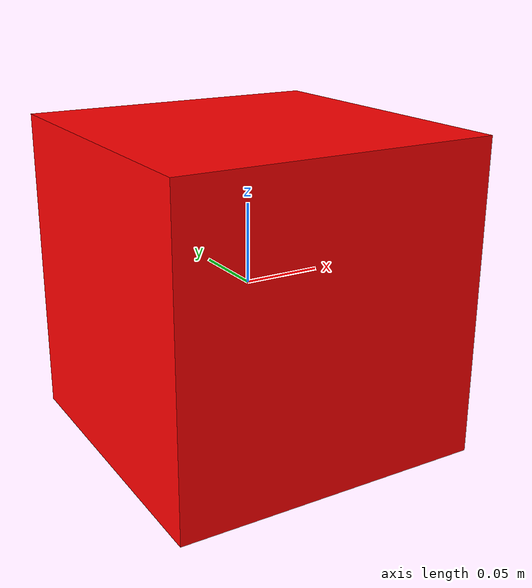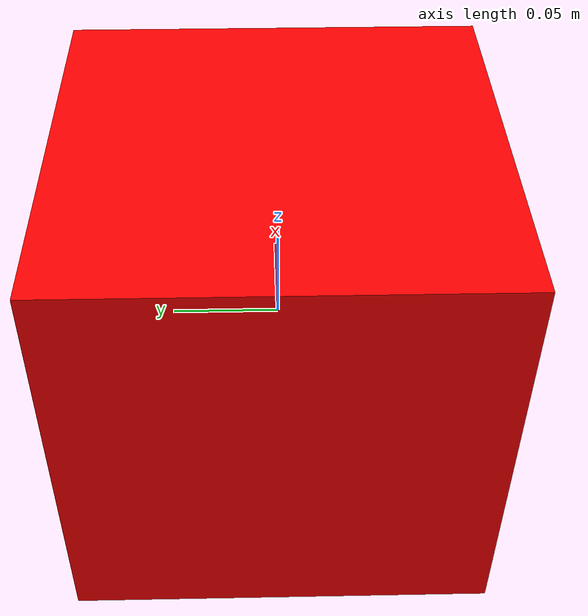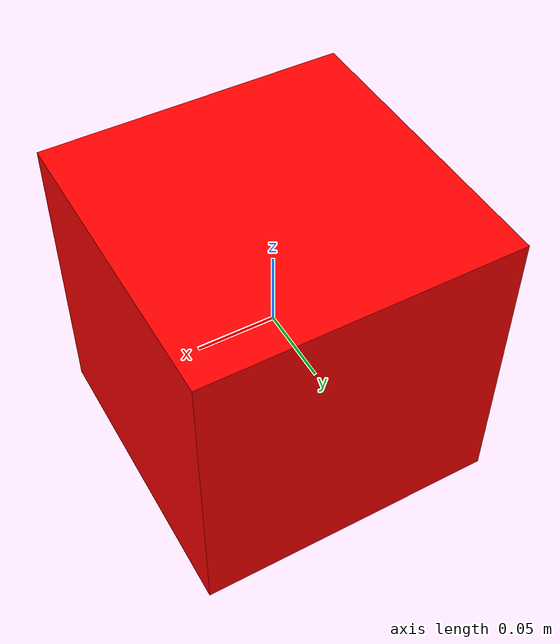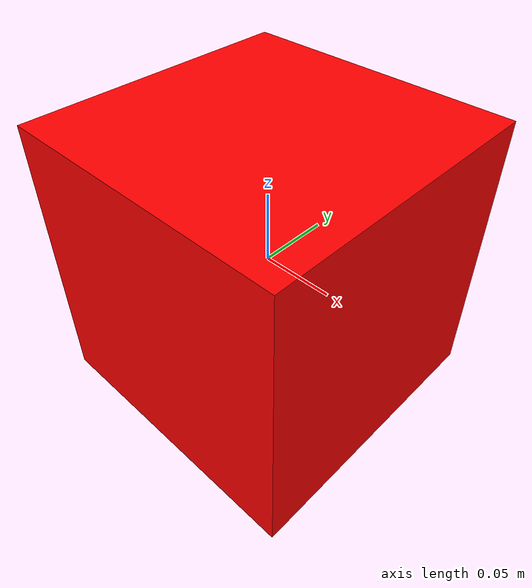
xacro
<?xml version="1.0"?>
<robot name="mecabot_gz" xmlns:xacro="http://www.ros.org/wiki/xacro">

  <!--
      This xacro file is to be used with the
      'ros_gz_sim create' command. That is to be
      spawned to gazebo and not to be used inside
      a world file.
  -->

  <xacro:include filename="lks_arena.include.xacro"/>

  <!-- SIZES -->
  <xacro:property name="cube_length" value="0.195"/>
  <xacro:property name="can_length" value="0.396"/>
  <xacro:property name="can_radius" value="0.078"/>

  <xacro:arg name="color" default="red"/>
  <xacro:arg name="shape" default="cube"/>

  <!-- MATERIALS -->
  <material name="red">
    <color rgba="1 0 0 1"/>
  </material>

  <material name="green">
    <color rgba="0 1 0 1"/>
  </material>

  <material name="blue">
    <color rgba="0 0 1 1"/>
  </material>

  <!-- ROOT LINK -->
  <link name="root"/>

  <!-- CUBE -->
  <xacro:if value="${'$(arg shape)' == 'cube'}">
    <link name="cube">

      <visual>
        <origin xyz="0 0 0" rpy="0 0 0"/>
        <geometry>
          <box size="${cube_length} ${cube_length} ${cube_length}"/>
        </geometry>
        <material name="$(arg color)"/>
      </visual>

      <collision>
        <origin xyz="0 0 0" rpy="0 0 0"/>
        <geometry>
          <box size="${cube_length} ${cube_length} ${cube_length}"/>
        </geometry>
      </collision>

      <xacro:inertial_box mass="0.4" x="${cube_length}" y="${cube_length}" z="${cube_length}">
        <origin xyz="0 0 0"/>
      </xacro:inertial_box>

    </link>
  </xacro:if>

  <!-- CAN -->
  <xacro:if value="${'$(arg shape)' == 'can'}">
    <link name="can">

      <visual>
        <origin xyz="0 0 0" rpy="0 0 0"/>
        <geometry>
          <cylinder radius="${can_radius}" length="${can_length}"/>
        </geometry>
        <material name="$(arg color)"/>
      </visual>

      <collision>
        <origin xyz="0 0 0" rpy="0 0 0"/>
        <geometry>
          <cylinder radius="${can_radius}" length="${can_length}"/>
        </geometry>
      </collision>

      <xacro:inertial_cylinder mass="0.1" length="${can_length}" radius="${can_radius}">
        <origin xyz="0 0 0"/>
      </xacro:inertial_cylinder>

    </link>
  </xacro:if>

  <!-- CIRCLE CARD -->
  <xacro:if value="${'$(arg shape)' == 'circle_card'}">
    <link name="circle_card">

      <visual>
        <origin xyz="0 0 0" rpy="0 0 0"/>
        <geometry>
          <!-- Assuming container box length -->
          <cylinder radius="0.14" length="0.001"/>
        </geometry>
        <material name="$(arg color)"/>
      </visual>

      <collision>
        <origin xyz="0 0 0" rpy="0 0 0"/>
        <geometry>
          <!-- Assuming container box length -->
          <cylinder radius="0.14" length="0.001"/>
        </geometry>
      </collision>

      <xacro:inertial_cylinder mass="0.001" length="0.001" radius="0.28">
        <origin xyz="0 0 0"/>
      </xacro:inertial_cylinder>

    </link>
  </xacro:if>

  <!-- SQUARE CARD -->
  <xacro:if value="${'$(arg shape)' == 'square_card'}">
    <link name="square_card">

      <visual>
        <origin xyz="0 0 0" rpy="0 0 0"/>
        <geometry>
          <!-- Assuming container box length -->
          <box size="0.28 0.28 0.001"/>
        </geometry>
        <material name="$(arg color)"/>
      </visual>

      <collision>
        <origin xyz="0 0 0" rpy="0 0 0"/>
        <geometry>
          <!-- Assuming container box length -->
          <box size="0.28 0.28 0.001"/>
        </geometry>
      </collision>

      <xacro:inertial_box mass="0.001" x="0.28" y="0.28" z="0.001">
        <origin xyz="0 0 0"/>
      </xacro:inertial_box>

    </link>
  </xacro:if>

  <!-- CREATE JOINT BASED ON ARGUMENTS -->
  <joint name="$(arg shape)_joint" type="fixed">
    <origin xyz="0 0 0"/>
    <parent link="root"/>
    <child link="$(arg shape)"/>
  </joint>

</robot>

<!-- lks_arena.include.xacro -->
<robot name="mecabot_gz" xmlns:xacro="http://www.ros.org/wiki/xacro">

  <xacro:property name="plank_thick" value="0.054"/>
  <xacro:property name="wall_height" value="0.6"/>

  <!-- BOX INERTIA MACRO -->
  <xacro:macro name="inertial_box" params="mass x y z *origin">
    <inertial>
      <xacro:insert_block name="origin"/>
      <mass value="${mass}" />
      <inertia ixx="${(1/12) * mass * (y*y+z*z)}" ixy="0.0" ixz="0.0"
              iyy="${(1/12) * mass * (x*x+z*z)}" iyz="0.0"
              izz="${(1/12) * mass * (x*x+y*y)}" />
    </inertial>
  </xacro:macro>

  <!-- CYLINDER INERTIA MACRO -->
  <xacro:macro name="inertial_cylinder" params="mass length radius *origin">
    <inertial>
      <xacro:insert_block name="origin"/>
      <mass value="${mass}" />
      <inertia ixx="${(1/12) * mass * (3*radius*radius + length*length)}" ixy="0.0" ixz="0.0"
              iyy="${(1/12) * mass * (3*radius*radius + length*length)}" iyz="0.0"
              izz="${(1/2) * mass * (radius*radius)}" />
    </inertial>
  </xacro:macro>

  <!-- PLANK GENERATION -->
  <xacro:macro name="make_plank" params="name length width mass">
    <link name="${name}">

      <visual>
        <origin xyz="0 0 0"/>
        <geometry>
          <box size="${length} ${plank_thick} ${width}"/>
        </geometry>
        <material name="white">
          <color rgba="1 1 1 1"/>
        </material>
      </visual>

      <collision>
        <origin xyz="0 0 0"/>
        <geometry>
          <box size="${length} ${plank_thick} ${width}"/>
        </geometry>
      </collision>

      <xacro:inertial_box mass="${mass}" x="${length}" y="${plank_thick}" z="${width}">
        <origin xyz="0 0 0"/>
      </xacro:inertial_box>

    </link>
    <gazebo reference="${name}">
      <material>Gazebo/White</material>
    </gazebo>
  </xacro:macro>

  <!-- OBJECT-OBJECT JOINT GENERATION -->
  <xacro:macro name="obj_to_obj" params="name0 name1 *origin">
    <joint name="${name0}_${name1}_joint" type="fixed">

      <xacro:insert_block name="origin"/>
      <parent link="${name0}"/>
      <child link="${name1}"/>

    </joint>
  </xacro:macro>

  <!-- WALL GENERATION -->
  <xacro:macro name="wall_link" params="name length mass">
    <link name="${name}">

      <visual>
        <origin xyz="0 0 0"/>
        <geometry>
          <box size="${length} ${plank_thick} ${wall_height}"/>
        </geometry>
        <material name="white">
          <color rgba="1 1 1 1"/>
        </material>
      </visual>

      <collision>
        <origin xyz="0 0 0"/>
        <geometry>
          <box size="${length} ${plank_thick} ${wall_height}"/>
        </geometry>
      </collision>

      <xacro:inertial_box mass="${mass}" x="${length}" y="${plank_thick}" z="${wall_height}">
        <origin xyz="0 0 0"/>
      </xacro:inertial_box>

    </link>
    <gazebo reference="${name}">
      <material>Gazebo/White</material>
    </gazebo>
  </xacro:macro>

  <!-- CONTAINER BOX GENERATION -->
  <xacro:macro name="cont_box" params="name">
    <link name="${name}">

      <visual>
        <origin xyz="0 0 0"/>
        <geometry>
          <box size="0.3 0.3 0.3"/>
        </geometry>
        <material name="white">
          <color rgba="1 1 1 1"/>
        </material>
      </visual>

      <collision>
        <origin xyz="0 0 0"/>
        <geometry>
          <box size="0.3 0.3 0.3"/>
        </geometry>
      </collision>

      <xacro:inertial_box mass="0.3" x="0.3" y="0.3" z="0.3">
        <origin xyz="0 0 0"/>
      </xacro:inertial_box>

    </link>
    <gazebo reference="${name}">
      <material>Gazebo/White</material>
    </gazebo>
  </xacro:macro>

  <!-- OBJECT-BASE JOINT GENERATION -->
  <xacro:macro name="wall_joint" params="wall *origin">
    <joint name="base_${wall}_joint" type="fixed">

      <xacro:insert_block name="origin"/>
      <parent link="base"/>
      <child link="${wall}"/>

    </joint>
  </xacro:macro>

  <!-- 4 CONTAINER BOX CLUSTER GENERATION -->
  <xacro:macro name="cont_box_4" params="name0 name1 name2 name3 x y">

    <xacro:wall_joint wall="${name0}">
      <origin xyz="${6 - x - 0.15} ${3 - y - 0.3 - 0.3} ${0.15 + 0.027}"/>
    </xacro:wall_joint>

    <xacro:wall_joint wall="${name1}">
      <origin xyz="${6 - x - 0.15} ${3 - y - 0.15} ${0.15 + 0.027}"/>
    </xacro:wall_joint>

    <xacro:wall_joint wall="${name2}">
      <origin xyz="${6 - x - 0.6} ${3 - y - 0.15} ${0.15 + 0.027}"/>
    </xacro:wall_joint>

    <xacro:wall_joint wall="${name3}">
      <origin xyz="${6 - x - 0.6} ${3 - y - 0.3 - 0.3} ${0.15 + 0.027}"/>
    </xacro:wall_joint>

  </xacro:macro>

  <!-- 2 CONTAINER BOX CLUSTER GENERATION -->
  <xacro:macro name="cont_box_2" params="name0 name1 x y">

    <xacro:wall_joint wall="${name0}">
      <origin xyz="${6 - x - 0.15} ${3 - y - 0.15} ${0.15 + 0.027}"/>
    </xacro:wall_joint>

    <xacro:wall_joint wall="${name1}">
      <origin xyz="${6 - x - 0.6} ${3 - y - 0.15} ${0.15 + 0.027}"/>
    </xacro:wall_joint>

  </xacro:macro>

  <!-- LINE GENERATION -->
  <xacro:macro name="make_line" params="name">
    <link name="${name}">

      <visual>
        <origin xyz="0 0 0"/>
        <geometry>
          <box size="0.45 0.054 0.0001"/>
        </geometry>
        <material name="black">
          <color rgba="0.01 0.01 0.01 1"/>
        </material>
      </visual>

      <collision>
        <origin xyz="0 0 0"/>
        <geometry>
          <box size="0.45 0.054 0.0001"/>
        </geometry>
      </collision>

      <xacro:inertial_box mass="0.01" x="0.75" y="0.054" z="0.01">
        <origin xyz="0 0 0"/>
      </xacro:inertial_box>

    </link>
  </xacro:macro>

  <!-- OBJECT-LINE JOINT LINK GENERATION -->
  <xacro:macro name="line_to_obj" params="obj line *origin">

    <xacro:make_line name="${line}"/>
    <joint name="${obj}_${line}_joint" type="fixed">

      <xacro:insert_block name="origin"/>
      <parent link="${obj}"/>
      <child link="${line}"/>

    </joint>
    <gazebo reference="${line}">
      <material>Gazebo/Black</material>
    </gazebo>
  </xacro:macro>

</robot>
